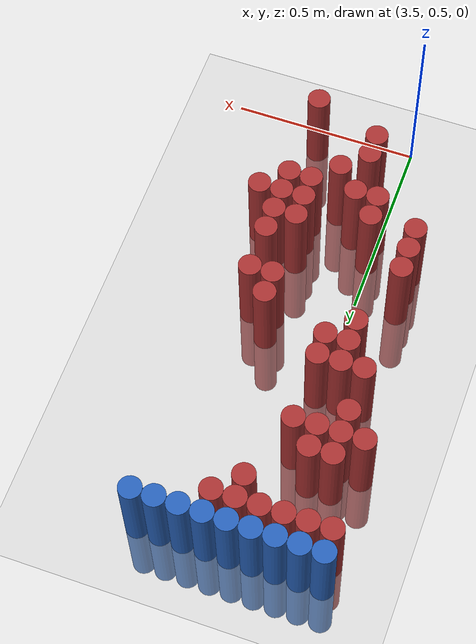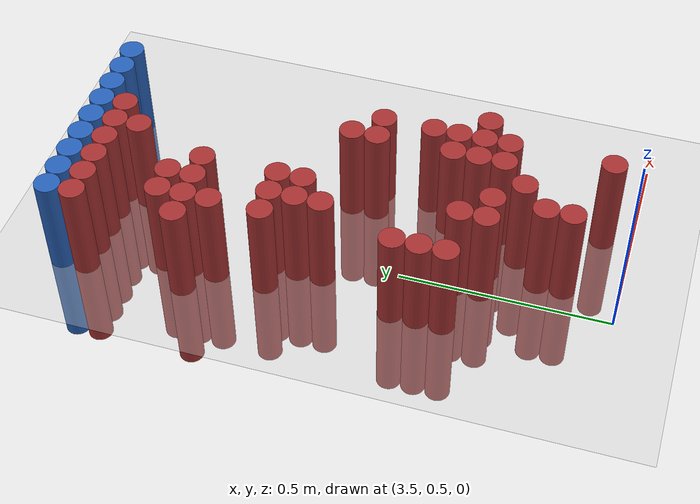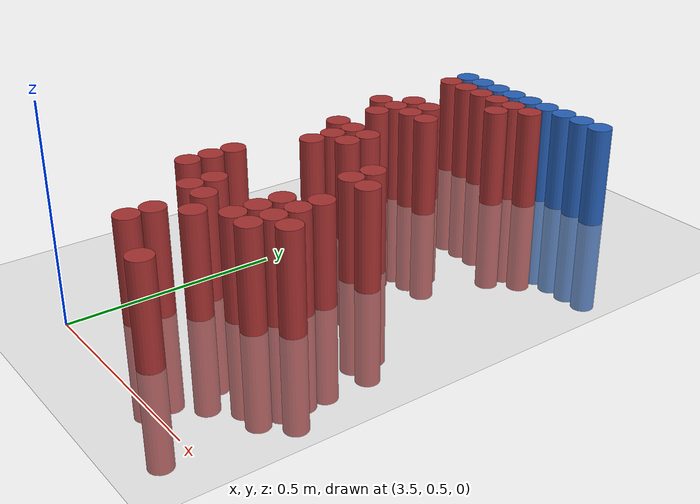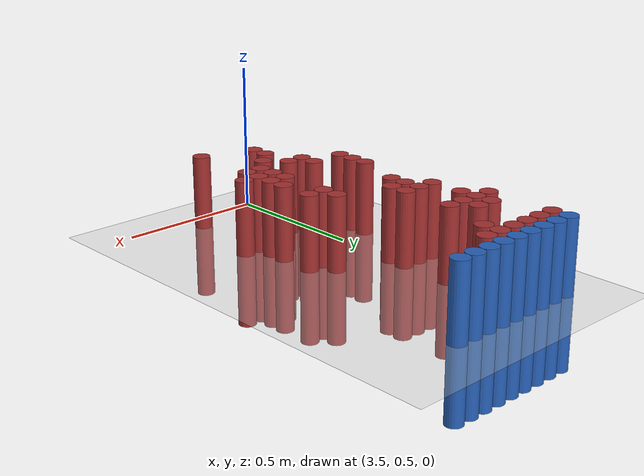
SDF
<sdf version="1.6">
 <world name="default">
  <model name="ground_plane">
   <static>1</static>
   <link name="link">
    <collision name="collision">
     <geometry><plane><normal>0 0 1</normal><size>100 100</size></plane></geometry>
     <surface><friction><ode><mu>100</mu><mu2>50</mu2></ode></friction></surface>
    </collision>
    <visual name="visual">
     <cast_shadows>0</cast_shadows>
     <geometry><plane><normal>0 0 1</normal><size>100 100</size></plane></geometry>
     <material>
      <script><uri>file://media/materials/scripts/gazebo.material</uri><name>Gazebo/Grey</name></script>
     </material>
    </visual>
   </link>
  </model>
  <model name="unit_cylinder_116">
   <static>1</static>
   <pose>3.330000 1.770000 0.000000 0.000000 0.000000 0.000000</pose>
   <link name="link">
    <inertial>
     <mass>1</mass>
     <inertia><ixx>0.145833</ixx><ixy>0</ixy><ixz>0</ixz><iyy>0.145833</iyy><iyz>0</iyz><izz>0.125</izz></inertia>
    </inertial>
    <collision name="collision">
     <geometry><cylinder><radius>0.030000</radius><length>0.5</length></cylinder></geometry>
    </collision>
    <visual name="visual">
     <geometry><cylinder><radius>0.030000</radius><length>0.5</length></cylinder></geometry>
     <material>
      <ambient>0.152000 0.379000 0.720000 1</ambient>
      <diffuse>0.152000 0.379000 0.720000 1</diffuse>
     </material>
     <material>
      <script><name>Gazebo/Grey</name><uri>file://media/materials/scripts/gazebo.material</uri></script>
     </material>
    </visual>
   </link>
  </model>
  <model name="unit_cylinder_117">
   <static>1</static>
   <pose>3.390000 1.770000 0.000000 0.000000 0.000000 0.000000</pose>
   <link name="link">
    <inertial>
     <mass>1</mass>
     <inertia><ixx>0.145833</ixx><ixy>0</ixy><ixz>0</ixz><iyy>0.145833</iyy><iyz>0</iyz><izz>0.125</izz></inertia>
    </inertial>
    <collision name="collision">
     <geometry><cylinder><radius>0.030000</radius><length>0.5</length></cylinder></geometry>
    </collision>
    <visual name="visual">
     <geometry><cylinder><radius>0.030000</radius><length>0.5</length></cylinder></geometry>
     <material>
      <ambient>0.152000 0.379000 0.720000 1</ambient>
      <diffuse>0.152000 0.379000 0.720000 1</diffuse>
     </material>
     <material>
      <script><name>Gazebo/Grey</name><uri>file://media/materials/scripts/gazebo.material</uri></script>
     </material>
    </visual>
   </link>
  </model>
  <model name="unit_cylinder_118">
   <static>1</static>
   <pose>3.450000 1.770000 0.000000 0.000000 0.000000 0.000000</pose>
   <link name="link">
    <inertial>
     <mass>1</mass>
     <inertia><ixx>0.145833</ixx><ixy>0</ixy><ixz>0</ixz><iyy>0.145833</iyy><iyz>0</iyz><izz>0.125</izz></inertia>
    </inertial>
    <collision name="collision">
     <geometry><cylinder><radius>0.030000</radius><length>0.5</length></cylinder></geometry>
    </collision>
    <visual name="visual">
     <geometry><cylinder><radius>0.030000</radius><length>0.5</length></cylinder></geometry>
     <material>
      <ambient>0.152000 0.379000 0.720000 1</ambient>
      <diffuse>0.152000 0.379000 0.720000 1</diffuse>
     </material>
     <material>
      <script><name>Gazebo/Grey</name><uri>file://media/materials/scripts/gazebo.material</uri></script>
     </material>
    </visual>
   </link>
  </model>
  <model name="unit_cylinder_119">
   <static>1</static>
   <pose>3.510000 1.770000 0.000000 0.000000 0.000000 0.000000</pose>
   <link name="link">
    <inertial>
     <mass>1</mass>
     <inertia><ixx>0.145833</ixx><ixy>0</ixy><ixz>0</ixz><iyy>0.145833</iyy><iyz>0</iyz><izz>0.125</izz></inertia>
    </inertial>
    <collision name="collision">
     <geometry><cylinder><radius>0.030000</radius><length>0.5</length></cylinder></geometry>
    </collision>
    <visual name="visual">
     <geometry><cylinder><radius>0.030000</radius><length>0.5</length></cylinder></geometry>
     <material>
      <ambient>0.152000 0.379000 0.720000 1</ambient>
      <diffuse>0.152000 0.379000 0.720000 1</diffuse>
     </material>
     <material>
      <script><name>Gazebo/Grey</name><uri>file://media/materials/scripts/gazebo.material</uri></script>
     </material>
    </visual>
   </link>
  </model>
  <model name="unit_cylinder_120">
   <static>1</static>
   <pose>3.570000 1.770000 0.000000 0.000000 0.000000 0.000000</pose>
   <link name="link">
    <inertial>
     <mass>1</mass>
     <inertia><ixx>0.145833</ixx><ixy>0</ixy><ixz>0</ixz><iyy>0.145833</iyy><iyz>0</iyz><izz>0.125</izz></inertia>
    </inertial>
    <collision name="collision">
     <geometry><cylinder><radius>0.030000</radius><length>0.5</length></cylinder></geometry>
    </collision>
    <visual name="visual">
     <geometry><cylinder><radius>0.030000</radius><length>0.5</length></cylinder></geometry>
     <material>
      <ambient>0.152000 0.379000 0.720000 1</ambient>
      <diffuse>0.152000 0.379000 0.720000 1</diffuse>
     </material>
     <material>
      <script><name>Gazebo/Grey</name><uri>file://media/materials/scripts/gazebo.material</uri></script>
     </material>
    </visual>
   </link>
  </model>
  <model name="unit_cylinder_121">
   <static>1</static>
   <pose>3.630000 1.770000 0.000000 0.000000 0.000000 0.000000</pose>
   <link name="link">
    <inertial>
     <mass>1</mass>
     <inertia><ixx>0.145833</ixx><ixy>0</ixy><ixz>0</ixz><iyy>0.145833</iyy><iyz>0</iyz><izz>0.125</izz></inertia>
    </inertial>
    <collision name="collision">
     <geometry><cylinder><radius>0.030000</radius><length>0.5</length></cylinder></geometry>
    </collision>
    <visual name="visual">
     <geometry><cylinder><radius>0.030000</radius><length>0.5</length></cylinder></geometry>
     <material>
      <ambient>0.152000 0.379000 0.720000 1</ambient>
      <diffuse>0.152000 0.379000 0.720000 1</diffuse>
     </material>
     <material>
      <script><name>Gazebo/Grey</name><uri>file://media/materials/scripts/gazebo.material</uri></script>
     </material>
    </visual>
   </link>
  </model>
  <model name="unit_cylinder_122">
   <static>1</static>
   <pose>3.690000 1.770000 0.000000 0.000000 0.000000 0.000000</pose>
   <link name="link">
    <inertial>
     <mass>1</mass>
     <inertia><ixx>0.145833</ixx><ixy>0</ixy><ixz>0</ixz><iyy>0.145833</iyy><iyz>0</iyz><izz>0.125</izz></inertia>
    </inertial>
    <collision name="collision">
     <geometry><cylinder><radius>0.030000</radius><length>0.5</length></cylinder></geometry>
    </collision>
    <visual name="visual">
     <geometry><cylinder><radius>0.030000</radius><length>0.5</length></cylinder></geometry>
     <material>
      <ambient>0.152000 0.379000 0.720000 1</ambient>
      <diffuse>0.152000 0.379000 0.720000 1</diffuse>
     </material>
     <material>
      <script><name>Gazebo/Grey</name><uri>file://media/materials/scripts/gazebo.material</uri></script>
     </material>
    </visual>
   </link>
  </model>
  <model name="unit_cylinder_123">
   <static>1</static>
   <pose>3.750000 1.770000 0.000000 0.000000 0.000000 0.000000</pose>
   <link name="link">
    <inertial>
     <mass>1</mass>
     <inertia><ixx>0.145833</ixx><ixy>0</ixy><ixz>0</ixz><iyy>0.145833</iyy><iyz>0</iyz><izz>0.125</izz></inertia>
    </inertial>
    <collision name="collision">
     <geometry><cylinder><radius>0.030000</radius><length>0.5</length></cylinder></geometry>
    </collision>
    <visual name="visual">
     <geometry><cylinder><radius>0.030000</radius><length>0.5</length></cylinder></geometry>
     <material>
      <ambient>0.152000 0.379000 0.720000 1</ambient>
      <diffuse>0.152000 0.379000 0.720000 1</diffuse>
     </material>
     <material>
      <script><name>Gazebo/Grey</name><uri>file://media/materials/scripts/gazebo.material</uri></script>
     </material>
    </visual>
   </link>
  </model>
  <model name="unit_cylinder_124">
   <static>1</static>
   <pose>3.810000 1.770000 0.000000 0.000000 0.000000 0.000000</pose>
   <link name="link">
    <inertial>
     <mass>1</mass>
     <inertia><ixx>0.145833</ixx><ixy>0</ixy><ixz>0</ixz><iyy>0.145833</iyy><iyz>0</iyz><izz>0.125</izz></inertia>
    </inertial>
    <collision name="collision">
     <geometry><cylinder><radius>0.030000</radius><length>0.5</length></cylinder></geometry>
    </collision>
    <visual name="visual">
     <geometry><cylinder><radius>0.030000</radius><length>0.5</length></cylinder></geometry>
     <material>
      <ambient>0.152000 0.379000 0.720000 1</ambient>
      <diffuse>0.152000 0.379000 0.720000 1</diffuse>
     </material>
     <material>
      <script><name>Gazebo/Grey</name><uri>file://media/materials/scripts/gazebo.material</uri></script>
     </material>
    </visual>
   </link>
  </model>
  <model name="unit_cylinder_137">
   <static>1</static>
   <pose>3.330000 1.710000 0.000000 0.000000 0.000000 0.000000</pose>
   <link name="link">
    <inertial>
     <mass>1</mass>
     <inertia><ixx>0.145833</ixx><ixy>0</ixy><ixz>0</ixz><iyy>0.145833</iyy><iyz>0</iyz><izz>0.125</izz></inertia>
    </inertial>
    <collision name="collision">
     <geometry><cylinder><radius>0.030000</radius><length>0.5</length></cylinder></geometry>
    </collision>
    <visual name="visual">
     <geometry><cylinder><radius>0.030000</radius><length>0.5</length></cylinder></geometry>
     <material>
      <ambient>0.648000 0.192000 0.192000 1</ambient>
      <diffuse>0.648000 0.192000 0.192000 1</diffuse>
     </material>
     <material>
      <script><name>Gazebo/Grey</name><uri>file://media/materials/scripts/gazebo.material</uri></script>
     </material>
    </visual>
   </link>
  </model>
  <model name="unit_cylinder_138">
   <static>1</static>
   <pose>3.390000 1.710000 0.000000 0.000000 0.000000 0.000000</pose>
   <link name="link">
    <inertial>
     <mass>1</mass>
     <inertia><ixx>0.145833</ixx><ixy>0</ixy><ixz>0</ixz><iyy>0.145833</iyy><iyz>0</iyz><izz>0.125</izz></inertia>
    </inertial>
    <collision name="collision">
     <geometry><cylinder><radius>0.030000</radius><length>0.5</length></cylinder></geometry>
    </collision>
    <visual name="visual">
     <geometry><cylinder><radius>0.030000</radius><length>0.5</length></cylinder></geometry>
     <material>
      <ambient>0.648000 0.192000 0.192000 1</ambient>
      <diffuse>0.648000 0.192000 0.192000 1</diffuse>
     </material>
     <material>
      <script><name>Gazebo/Grey</name><uri>file://media/materials/scripts/gazebo.material</uri></script>
     </material>
    </visual>
   </link>
  </model>
  <model name="unit_cylinder_139">
   <static>1</static>
   <pose>3.450000 1.710000 0.000000 0.000000 0.000000 0.000000</pose>
   <link name="link">
    <inertial>
     <mass>1</mass>
     <inertia><ixx>0.145833</ixx><ixy>0</ixy><ixz>0</ixz><iyy>0.145833</iyy><iyz>0</iyz><izz>0.125</izz></inertia>
    </inertial>
    <collision name="collision">
     <geometry><cylinder><radius>0.030000</radius><length>0.5</length></cylinder></geometry>
    </collision>
    <visual name="visual">
     <geometry><cylinder><radius>0.030000</radius><length>0.5</length></cylinder></geometry>
     <material>
      <ambient>0.648000 0.192000 0.192000 1</ambient>
      <diffuse>0.648000 0.192000 0.192000 1</diffuse>
     </material>
     <material>
      <script><name>Gazebo/Grey</name><uri>file://media/materials/scripts/gazebo.material</uri></script>
     </material>
    </visual>
   </link>
  </model>
  <model name="unit_cylinder_140">
   <static>1</static>
   <pose>3.510000 1.710000 0.000000 0.000000 0.000000 0.000000</pose>
   <link name="link">
    <inertial>
     <mass>1</mass>
     <inertia><ixx>0.145833</ixx><ixy>0</ixy><ixz>0</ixz><iyy>0.145833</iyy><iyz>0</iyz><izz>0.125</izz></inertia>
    </inertial>
    <collision name="collision">
     <geometry><cylinder><radius>0.030000</radius><length>0.5</length></cylinder></geometry>
    </collision>
    <visual name="visual">
     <geometry><cylinder><radius>0.030000</radius><length>0.5</length></cylinder></geometry>
     <material>
      <ambient>0.648000 0.192000 0.192000 1</ambient>
      <diffuse>0.648000 0.192000 0.192000 1</diffuse>
     </material>
     <material>
      <script><name>Gazebo/Grey</name><uri>file://media/materials/scripts/gazebo.material</uri></script>
     </material>
    </visual>
   </link>
  </model>
  <model name="unit_cylinder_141">
   <static>1</static>
   <pose>3.570000 1.710000 0.000000 0.000000 0.000000 0.000000</pose>
   <link name="link">
    <inertial>
     <mass>1</mass>
     <inertia><ixx>0.145833</ixx><ixy>0</ixy><ixz>0</ixz><iyy>0.145833</iyy><iyz>0</iyz><izz>0.125</izz></inertia>
    </inertial>
    <collision name="collision">
     <geometry><cylinder><radius>0.030000</radius><length>0.5</length></cylinder></geometry>
    </collision>
    <visual name="visual">
     <geometry><cylinder><radius>0.030000</radius><length>0.5</length></cylinder></geometry>
     <material>
      <ambient>0.648000 0.192000 0.192000 1</ambient>
      <diffuse>0.648000 0.192000 0.192000 1</diffuse>
     </material>
     <material>
      <script><name>Gazebo/Grey</name><uri>file://media/materials/scripts/gazebo.material</uri></script>
     </material>
    </visual>
   </link>
  </model>
  <model name="unit_cylinder_142">
   <static>1</static>
   <pose>3.630000 1.710000 0.000000 0.000000 0.000000 0.000000</pose>
   <link name="link">
    <inertial>
     <mass>1</mass>
     <inertia><ixx>0.145833</ixx><ixy>0</ixy><ixz>0</ixz><iyy>0.145833</iyy><iyz>0</iyz><izz>0.125</izz></inertia>
    </inertial>
    <collision name="collision">
     <geometry><cylinder><radius>0.030000</radius><length>0.5</length></cylinder></geometry>
    </collision>
    <visual name="visual">
     <geometry><cylinder><radius>0.030000</radius><length>0.5</length></cylinder></geometry>
     <material>
      <ambient>0.648000 0.192000 0.192000 1</ambient>
      <diffuse>0.648000 0.192000 0.192000 1</diffuse>
     </material>
     <material>
      <script><name>Gazebo/Grey</name><uri>file://media/materials/scripts/gazebo.material</uri></script>
     </material>
    </visual>
   </link>
  </model>
  <model name="unit_cylinder_150">
   <static>1</static>
   <pose>3.570000 1.650000 0.000000 0.000000 0.000000 0.000000</pose>
   <link name="link">
    <inertial>
     <mass>1</mass>
     <inertia><ixx>0.145833</ixx><ixy>0</ixy><ixz>0</ixz><iyy>0.145833</iyy><iyz>0</iyz><izz>0.125</izz></inertia>
    </inertial>
    <collision name="collision">
     <geometry><cylinder><radius>0.030000</radius><length>0.5</length></cylinder></geometry>
    </collision>
    <visual name="visual">
     <geometry><cylinder><radius>0.030000</radius><length>0.5</length></cylinder></geometry>
     <material>
      <ambient>0.648000 0.192000 0.192000 1</ambient>
      <diffuse>0.648000 0.192000 0.192000 1</diffuse>
     </material>
     <material>
      <script><name>Gazebo/Grey</name><uri>file://media/materials/scripts/gazebo.material</uri></script>
     </material>
    </visual>
   </link>
  </model>
  <model name="unit_cylinder_156">
   <static>1</static>
   <pose>3.390000 1.530000 0.000000 0.000000 0.000000 0.000000</pose>
   <link name="link">
    <inertial>
     <mass>1</mass>
     <inertia><ixx>0.145833</ixx><ixy>0</ixy><ixz>0</ixz><iyy>0.145833</iyy><iyz>0</iyz><izz>0.125</izz></inertia>
    </inertial>
    <collision name="collision">
     <geometry><cylinder><radius>0.030000</radius><length>0.5</length></cylinder></geometry>
    </collision>
    <visual name="visual">
     <geometry><cylinder><radius>0.030000</radius><length>0.5</length></cylinder></geometry>
     <material>
      <ambient>0.648000 0.192000 0.192000 1</ambient>
      <diffuse>0.648000 0.192000 0.192000 1</diffuse>
     </material>
     <material>
      <script><name>Gazebo/Grey</name><uri>file://media/materials/scripts/gazebo.material</uri></script>
     </material>
    </visual>
   </link>
  </model>
  <model name="unit_cylinder_157">
   <static>1</static>
   <pose>3.450000 1.530000 0.000000 0.000000 0.000000 0.000000</pose>
   <link name="link">
    <inertial>
     <mass>1</mass>
     <inertia><ixx>0.145833</ixx><ixy>0</ixy><ixz>0</ixz><iyy>0.145833</iyy><iyz>0</iyz><izz>0.125</izz></inertia>
    </inertial>
    <collision name="collision">
     <geometry><cylinder><radius>0.030000</radius><length>0.5</length></cylinder></geometry>
    </collision>
    <visual name="visual">
     <geometry><cylinder><radius>0.030000</radius><length>0.5</length></cylinder></geometry>
     <material>
      <ambient>0.648000 0.192000 0.192000 1</ambient>
      <diffuse>0.648000 0.192000 0.192000 1</diffuse>
     </material>
     <material>
      <script><name>Gazebo/Grey</name><uri>file://media/materials/scripts/gazebo.material</uri></script>
     </material>
    </visual>
   </link>
  </model>
  <model name="unit_cylinder_159">
   <static>1</static>
   <pose>3.330000 1.470000 0.000000 0.000000 0.000000 0.000000</pose>
   <link name="link">
    <inertial>
     <mass>1</mass>
     <inertia><ixx>0.145833</ixx><ixy>0</ixy><ixz>0</ixz><iyy>0.145833</iyy><iyz>0</iyz><izz>0.125</izz></inertia>
    </inertial>
    <collision name="collision">
     <geometry><cylinder><radius>0.030000</radius><length>0.5</length></cylinder></geometry>
    </collision>
    <visual name="visual">
     <geometry><cylinder><radius>0.030000</radius><length>0.5</length></cylinder></geometry>
     <material>
      <ambient>0.648000 0.192000 0.192000 1</ambient>
      <diffuse>0.648000 0.192000 0.192000 1</diffuse>
     </material>
     <material>
      <script><name>Gazebo/Grey</name><uri>file://media/materials/scripts/gazebo.material</uri></script>
     </material>
    </visual>
   </link>
  </model>
  <model name="unit_cylinder_160">
   <static>1</static>
   <pose>3.390000 1.470000 0.000000 0.000000 0.000000 0.000000</pose>
   <link name="link">
    <inertial>
     <mass>1</mass>
     <inertia><ixx>0.145833</ixx><ixy>0</ixy><ixz>0</ixz><iyy>0.145833</iyy><iyz>0</iyz><izz>0.125</izz></inertia>
    </inertial>
    <collision name="collision">
     <geometry><cylinder><radius>0.030000</radius><length>0.5</length></cylinder></geometry>
    </collision>
    <visual name="visual">
     <geometry><cylinder><radius>0.030000</radius><length>0.5</length></cylinder></geometry>
     <material>
      <ambient>0.648000 0.192000 0.192000 1</ambient>
      <diffuse>0.648000 0.192000 0.192000 1</diffuse>
     </material>
     <material>
      <script><name>Gazebo/Grey</name><uri>file://media/materials/scripts/gazebo.material</uri></script>
     </material>
    </visual>
   </link>
  </model>
  <model name="unit_cylinder_161">
   <static>1</static>
   <pose>3.450000 1.470000 0.000000 0.000000 0.000000 0.000000</pose>
   <link name="link">
    <inertial>
     <mass>1</mass>
     <inertia><ixx>0.145833</ixx><ixy>0</ixy><ixz>0</ixz><iyy>0.145833</iyy><iyz>0</iyz><izz>0.125</izz></inertia>
    </inertial>
    <collision name="collision">
     <geometry><cylinder><radius>0.030000</radius><length>0.5</length></cylinder></geometry>
    </collision>
    <visual name="visual">
     <geometry><cylinder><radius>0.030000</radius><length>0.5</length></cylinder></geometry>
     <material>
      <ambient>0.648000 0.192000 0.192000 1</ambient>
      <diffuse>0.648000 0.192000 0.192000 1</diffuse>
     </material>
     <material>
      <script><name>Gazebo/Grey</name><uri>file://media/materials/scripts/gazebo.material</uri></script>
     </material>
    </visual>
   </link>
  </model>
  <model name="unit_cylinder_162">
   <static>1</static>
   <pose>3.510000 1.470000 0.000000 0.000000 0.000000 0.000000</pose>
   <link name="link">
    <inertial>
     <mass>1</mass>
     <inertia><ixx>0.145833</ixx><ixy>0</ixy><ixz>0</ixz><iyy>0.145833</iyy><iyz>0</iyz><izz>0.125</izz></inertia>
    </inertial>
    <collision name="collision">
     <geometry><cylinder><radius>0.030000</radius><length>0.5</length></cylinder></geometry>
    </collision>
    <visual name="visual">
     <geometry><cylinder><radius>0.030000</radius><length>0.5</length></cylinder></geometry>
     <material>
      <ambient>0.648000 0.192000 0.192000 1</ambient>
      <diffuse>0.648000 0.192000 0.192000 1</diffuse>
     </material>
     <material>
      <script><name>Gazebo/Grey</name><uri>file://media/materials/scripts/gazebo.material</uri></script>
     </material>
    </visual>
   </link>
  </model>
  <model name="unit_cylinder_163">
   <static>1</static>
   <pose>3.390000 1.410000 0.000000 0.000000 0.000000 0.000000</pose>
   <link name="link">
    <inertial>
     <mass>1</mass>
     <inertia><ixx>0.145833</ixx><ixy>0</ixy><ixz>0</ixz><iyy>0.145833</iyy><iyz>0</iyz><izz>0.125</izz></inertia>
    </inertial>
    <collision name="collision">
     <geometry><cylinder><radius>0.030000</radius><length>0.5</length></cylinder></geometry>
    </collision>
    <visual name="visual">
     <geometry><cylinder><radius>0.030000</radius><length>0.5</length></cylinder></geometry>
     <material>
      <ambient>0.648000 0.192000 0.192000 1</ambient>
      <diffuse>0.648000 0.192000 0.192000 1</diffuse>
     </material>
     <material>
      <script><name>Gazebo/Grey</name><uri>file://media/materials/scripts/gazebo.material</uri></script>
     </material>
    </visual>
   </link>
  </model>
  <model name="unit_cylinder_166">
   <static>1</static>
   <pose>3.390000 1.290000 0.000000 0.000000 0.000000 0.000000</pose>
   <link name="link">
    <inertial>
     <mass>1</mass>
     <inertia><ixx>0.145833</ixx><ixy>0</ixy><ixz>0</ixz><iyy>0.145833</iyy><iyz>0</iyz><izz>0.125</izz></inertia>
    </inertial>
    <collision name="collision">
     <geometry><cylinder><radius>0.030000</radius><length>0.5</length></cylinder></geometry>
    </collision>
    <visual name="visual">
     <geometry><cylinder><radius>0.030000</radius><length>0.5</length></cylinder></geometry>
     <material>
      <ambient>0.648000 0.192000 0.192000 1</ambient>
      <diffuse>0.648000 0.192000 0.192000 1</diffuse>
     </material>
     <material>
      <script><name>Gazebo/Grey</name><uri>file://media/materials/scripts/gazebo.material</uri></script>
     </material>
    </visual>
   </link>
  </model>
  <model name="unit_cylinder_167">
   <static>1</static>
   <pose>3.450000 1.290000 0.000000 0.000000 0.000000 0.000000</pose>
   <link name="link">
    <inertial>
     <mass>1</mass>
     <inertia><ixx>0.145833</ixx><ixy>0</ixy><ixz>0</ixz><iyy>0.145833</iyy><iyz>0</iyz><izz>0.125</izz></inertia>
    </inertial>
    <collision name="collision">
     <geometry><cylinder><radius>0.030000</radius><length>0.5</length></cylinder></geometry>
    </collision>
    <visual name="visual">
     <geometry><cylinder><radius>0.030000</radius><length>0.5</length></cylinder></geometry>
     <material>
      <ambient>0.648000 0.192000 0.192000 1</ambient>
      <diffuse>0.648000 0.192000 0.192000 1</diffuse>
     </material>
     <material>
      <script><name>Gazebo/Grey</name><uri>file://media/materials/scripts/gazebo.material</uri></script>
     </material>
    </visual>
   </link>
  </model>
  <model name="unit_cylinder_168">
   <static>1</static>
   <pose>3.510000 1.290000 0.000000 0.000000 0.000000 0.000000</pose>
   <link name="link">
    <inertial>
     <mass>1</mass>
     <inertia><ixx>0.145833</ixx><ixy>0</ixy><ixz>0</ixz><iyy>0.145833</iyy><iyz>0</iyz><izz>0.125</izz></inertia>
    </inertial>
    <collision name="collision">
     <geometry><cylinder><radius>0.030000</radius><length>0.5</length></cylinder></geometry>
    </collision>
    <visual name="visual">
     <geometry><cylinder><radius>0.030000</radius><length>0.5</length></cylinder></geometry>
     <material>
      <ambient>0.648000 0.192000 0.192000 1</ambient>
      <diffuse>0.648000 0.192000 0.192000 1</diffuse>
     </material>
     <material>
      <script><name>Gazebo/Grey</name><uri>file://media/materials/scripts/gazebo.material</uri></script>
     </material>
    </visual>
   </link>
  </model>
  <model name="unit_cylinder_170">
   <static>1</static>
   <pose>3.450000 1.230000 0.000000 0.000000 0.000000 0.000000</pose>
   <link name="link">
    <inertial>
     <mass>1</mass>
     <inertia><ixx>0.145833</ixx><ixy>0</ixy><ixz>0</ixz><iyy>0.145833</iyy><iyz>0</iyz><izz>0.125</izz></inertia>
    </inertial>
    <collision name="collision">
     <geometry><cylinder><radius>0.030000</radius><length>0.5</length></cylinder></geometry>
    </collision>
    <visual name="visual">
     <geometry><cylinder><radius>0.030000</radius><length>0.5</length></cylinder></geometry>
     <material>
      <ambient>0.648000 0.192000 0.192000 1</ambient>
      <diffuse>0.648000 0.192000 0.192000 1</diffuse>
     </material>
     <material>
      <script><name>Gazebo/Grey</name><uri>file://media/materials/scripts/gazebo.material</uri></script>
     </material>
    </visual>
   </link>
  </model>
  <model name="unit_cylinder_171">
   <static>1</static>
   <pose>3.510000 1.230000 0.000000 0.000000 0.000000 0.000000</pose>
   <link name="link">
    <inertial>
     <mass>1</mass>
     <inertia><ixx>0.145833</ixx><ixy>0</ixy><ixz>0</ixz><iyy>0.145833</iyy><iyz>0</iyz><izz>0.125</izz></inertia>
    </inertial>
    <collision name="collision">
     <geometry><cylinder><radius>0.030000</radius><length>0.5</length></cylinder></geometry>
    </collision>
    <visual name="visual">
     <geometry><cylinder><radius>0.030000</radius><length>0.5</length></cylinder></geometry>
     <material>
      <ambient>0.648000 0.192000 0.192000 1</ambient>
      <diffuse>0.648000 0.192000 0.192000 1</diffuse>
     </material>
     <material>
      <script><name>Gazebo/Grey</name><uri>file://media/materials/scripts/gazebo.material</uri></script>
     </material>
    </visual>
   </link>
  </model>
  <model name="unit_cylinder_175">
   <static>1</static>
   <pose>3.450000 1.170000 0.000000 0.000000 0.000000 0.000000</pose>
   <link name="link">
    <inertial>
     <mass>1</mass>
     <inertia><ixx>0.145833</ixx><ixy>0</ixy><ixz>0</ixz><iyy>0.145833</iyy><iyz>0</iyz><izz>0.125</izz></inertia>
    </inertial>
    <collision name="collision">
     <geometry><cylinder><radius>0.030000</radius><length>0.5</length></cylinder></geometry>
    </collision>
    <visual name="visual">
     <geometry><cylinder><radius>0.030000</radius><length>0.5</length></cylinder></geometry>
     <material>
      <ambient>0.648000 0.192000 0.192000 1</ambient>
      <diffuse>0.648000 0.192000 0.192000 1</diffuse>
     </material>
     <material>
      <script><name>Gazebo/Grey</name><uri>file://media/materials/scripts/gazebo.material</uri></script>
     </material>
    </visual>
   </link>
  </model>
  <model name="unit_cylinder_176">
   <static>1</static>
   <pose>3.690000 1.170000 0.000000 0.000000 0.000000 0.000000</pose>
   <link name="link">
    <inertial>
     <mass>1</mass>
     <inertia><ixx>0.145833</ixx><ixy>0</ixy><ixz>0</ixz><iyy>0.145833</iyy><iyz>0</iyz><izz>0.125</izz></inertia>
    </inertial>
    <collision name="collision">
     <geometry><cylinder><radius>0.030000</radius><length>0.5</length></cylinder></geometry>
    </collision>
    <visual name="visual">
     <geometry><cylinder><radius>0.030000</radius><length>0.5</length></cylinder></geometry>
     <material>
      <ambient>0.648000 0.192000 0.192000 1</ambient>
      <diffuse>0.648000 0.192000 0.192000 1</diffuse>
     </material>
     <material>
      <script><name>Gazebo/Grey</name><uri>file://media/materials/scripts/gazebo.material</uri></script>
     </material>
    </visual>
   </link>
  </model>
  <model name="unit_cylinder_180">
   <static>1</static>
   <pose>3.690000 1.110000 0.000000 0.000000 0.000000 0.000000</pose>
   <link name="link">
    <inertial>
     <mass>1</mass>
     <inertia><ixx>0.145833</ixx><ixy>0</ixy><ixz>0</ixz><iyy>0.145833</iyy><iyz>0</iyz><izz>0.125</izz></inertia>
    </inertial>
    <collision name="collision">
     <geometry><cylinder><radius>0.030000</radius><length>0.5</length></cylinder></geometry>
    </collision>
    <visual name="visual">
     <geometry><cylinder><radius>0.030000</radius><length>0.5</length></cylinder></geometry>
     <material>
      <ambient>0.648000 0.192000 0.192000 1</ambient>
      <diffuse>0.648000 0.192000 0.192000 1</diffuse>
     </material>
     <material>
      <script><name>Gazebo/Grey</name><uri>file://media/materials/scripts/gazebo.material</uri></script>
     </material>
    </visual>
   </link>
  </model>
  <model name="unit_cylinder_181">
   <static>1</static>
   <pose>3.750000 1.110000 0.000000 0.000000 0.000000 0.000000</pose>
   <link name="link">
    <inertial>
     <mass>1</mass>
     <inertia><ixx>0.145833</ixx><ixy>0</ixy><ixz>0</ixz><iyy>0.145833</iyy><iyz>0</iyz><izz>0.125</izz></inertia>
    </inertial>
    <collision name="collision">
     <geometry><cylinder><radius>0.030000</radius><length>0.5</length></cylinder></geometry>
    </collision>
    <visual name="visual">
     <geometry><cylinder><radius>0.030000</radius><length>0.5</length></cylinder></geometry>
     <material>
      <ambient>0.648000 0.192000 0.192000 1</ambient>
      <diffuse>0.648000 0.192000 0.192000 1</diffuse>
     </material>
     <material>
      <script><name>Gazebo/Grey</name><uri>file://media/materials/scripts/gazebo.material</uri></script>
     </material>
    </visual>
   </link>
  </model>
  <model name="unit_cylinder_193">
   <static>1</static>
   <pose>3.390000 0.990000 0.000000 0.000000 0.000000 0.000000</pose>
   <link name="link">
    <inertial>
     <mass>1</mass>
     <inertia><ixx>0.145833</ixx><ixy>0</ixy><ixz>0</ixz><iyy>0.145833</iyy><iyz>0</iyz><izz>0.125</izz></inertia>
    </inertial>
    <collision name="collision">
     <geometry><cylinder><radius>0.030000</radius><length>0.5</length></cylinder></geometry>
    </collision>
    <visual name="visual">
     <geometry><cylinder><radius>0.030000</radius><length>0.5</length></cylinder></geometry>
     <material>
      <ambient>0.648000 0.192000 0.192000 1</ambient>
      <diffuse>0.648000 0.192000 0.192000 1</diffuse>
     </material>
     <material>
      <script><name>Gazebo/Grey</name><uri>file://media/materials/scripts/gazebo.material</uri></script>
     </material>
    </visual>
   </link>
  </model>
  <model name="unit_cylinder_194">
   <static>1</static>
   <pose>3.750000 0.990000 0.000000 0.000000 0.000000 0.000000</pose>
   <link name="link">
    <inertial>
     <mass>1</mass>
     <inertia><ixx>0.145833</ixx><ixy>0</ixy><ixz>0</ixz><iyy>0.145833</iyy><iyz>0</iyz><izz>0.125</izz></inertia>
    </inertial>
    <collision name="collision">
     <geometry><cylinder><radius>0.030000</radius><length>0.5</length></cylinder></geometry>
    </collision>
    <visual name="visual">
     <geometry><cylinder><radius>0.030000</radius><length>0.5</length></cylinder></geometry>
     <material>
      <ambient>0.648000 0.192000 0.192000 1</ambient>
      <diffuse>0.648000 0.192000 0.192000 1</diffuse>
     </material>
     <material>
      <script><name>Gazebo/Grey</name><uri>file://media/materials/scripts/gazebo.material</uri></script>
     </material>
    </visual>
   </link>
  </model>
  <model name="unit_cylinder_201">
   <static>1</static>
   <pose>3.390000 0.930000 0.000000 0.000000 0.000000 0.000000</pose>
   <link name="link">
    <inertial>
     <mass>1</mass>
     <inertia><ixx>0.145833</ixx><ixy>0</ixy><ixz>0</ixz><iyy>0.145833</iyy><iyz>0</iyz><izz>0.125</izz></inertia>
    </inertial>
    <collision name="collision">
     <geometry><cylinder><radius>0.030000</radius><length>0.5</length></cylinder></geometry>
    </collision>
    <visual name="visual">
     <geometry><cylinder><radius>0.030000</radius><length>0.5</length></cylinder></geometry>
     <material>
      <ambient>0.648000 0.192000 0.192000 1</ambient>
      <diffuse>0.648000 0.192000 0.192000 1</diffuse>
     </material>
     <material>
      <script><name>Gazebo/Grey</name><uri>file://media/materials/scripts/gazebo.material</uri></script>
     </material>
    </visual>
   </link>
  </model>
  <model name="unit_cylinder_202">
   <static>1</static>
   <pose>3.690000 0.930000 0.000000 0.000000 0.000000 0.000000</pose>
   <link name="link">
    <inertial>
     <mass>1</mass>
     <inertia><ixx>0.145833</ixx><ixy>0</ixy><ixz>0</ixz><iyy>0.145833</iyy><iyz>0</iyz><izz>0.125</izz></inertia>
    </inertial>
    <collision name="collision">
     <geometry><cylinder><radius>0.030000</radius><length>0.5</length></cylinder></geometry>
    </collision>
    <visual name="visual">
     <geometry><cylinder><radius>0.030000</radius><length>0.5</length></cylinder></geometry>
     <material>
      <ambient>0.648000 0.192000 0.192000 1</ambient>
      <diffuse>0.648000 0.192000 0.192000 1</diffuse>
     </material>
     <material>
      <script><name>Gazebo/Grey</name><uri>file://media/materials/scripts/gazebo.material</uri></script>
     </material>
    </visual>
   </link>
  </model>
  <model name="unit_cylinder_203">
   <static>1</static>
   <pose>3.750000 0.930000 0.000000 0.000000 0.000000 0.000000</pose>
   <link name="link">
    <inertial>
     <mass>1</mass>
     <inertia><ixx>0.145833</ixx><ixy>0</ixy><ixz>0</ixz><iyy>0.145833</iyy><iyz>0</iyz><izz>0.125</izz></inertia>
    </inertial>
    <collision name="collision">
     <geometry><cylinder><radius>0.030000</radius><length>0.5</length></cylinder></geometry>
    </collision>
    <visual name="visual">
     <geometry><cylinder><radius>0.030000</radius><length>0.5</length></cylinder></geometry>
     <material>
      <ambient>0.648000 0.192000 0.192000 1</ambient>
      <diffuse>0.648000 0.192000 0.192000 1</diffuse>
     </material>
     <material>
      <script><name>Gazebo/Grey</name><uri>file://media/materials/scripts/gazebo.material</uri></script>
     </material>
    </visual>
   </link>
  </model>
  <model name="unit_cylinder_207">
   <static>1</static>
   <pose>3.390000 0.870000 0.000000 0.000000 0.000000 0.000000</pose>
   <link name="link">
    <inertial>
     <mass>1</mass>
     <inertia><ixx>0.145833</ixx><ixy>0</ixy><ixz>0</ixz><iyy>0.145833</iyy><iyz>0</iyz><izz>0.125</izz></inertia>
    </inertial>
    <collision name="collision">
     <geometry><cylinder><radius>0.030000</radius><length>0.5</length></cylinder></geometry>
    </collision>
    <visual name="visual">
     <geometry><cylinder><radius>0.030000</radius><length>0.5</length></cylinder></geometry>
     <material>
      <ambient>0.648000 0.192000 0.192000 1</ambient>
      <diffuse>0.648000 0.192000 0.192000 1</diffuse>
     </material>
     <material>
      <script><name>Gazebo/Grey</name><uri>file://media/materials/scripts/gazebo.material</uri></script>
     </material>
    </visual>
   </link>
  </model>
  <model name="unit_cylinder_208">
   <static>1</static>
   <pose>3.510000 0.870000 0.000000 0.000000 0.000000 0.000000</pose>
   <link name="link">
    <inertial>
     <mass>1</mass>
     <inertia><ixx>0.145833</ixx><ixy>0</ixy><ixz>0</ixz><iyy>0.145833</iyy><iyz>0</iyz><izz>0.125</izz></inertia>
    </inertial>
    <collision name="collision">
     <geometry><cylinder><radius>0.030000</radius><length>0.5</length></cylinder></geometry>
    </collision>
    <visual name="visual">
     <geometry><cylinder><radius>0.030000</radius><length>0.5</length></cylinder></geometry>
     <material>
      <ambient>0.648000 0.192000 0.192000 1</ambient>
      <diffuse>0.648000 0.192000 0.192000 1</diffuse>
     </material>
     <material>
      <script><name>Gazebo/Grey</name><uri>file://media/materials/scripts/gazebo.material</uri></script>
     </material>
    </visual>
   </link>
  </model>
  <model name="unit_cylinder_209">
   <static>1</static>
   <pose>3.690000 0.870000 0.000000 0.000000 0.000000 0.000000</pose>
   <link name="link">
    <inertial>
     <mass>1</mass>
     <inertia><ixx>0.145833</ixx><ixy>0</ixy><ixz>0</ixz><iyy>0.145833</iyy><iyz>0</iyz><izz>0.125</izz></inertia>
    </inertial>
    <collision name="collision">
     <geometry><cylinder><radius>0.030000</radius><length>0.5</length></cylinder></geometry>
    </collision>
    <visual name="visual">
     <geometry><cylinder><radius>0.030000</radius><length>0.5</length></cylinder></geometry>
     <material>
      <ambient>0.648000 0.192000 0.192000 1</ambient>
      <diffuse>0.648000 0.192000 0.192000 1</diffuse>
     </material>
     <material>
      <script><name>Gazebo/Grey</name><uri>file://media/materials/scripts/gazebo.material</uri></script>
     </material>
    </visual>
   </link>
  </model>
  <model name="unit_cylinder_210">
   <static>1</static>
   <pose>3.750000 0.870000 0.000000 0.000000 0.000000 0.000000</pose>
   <link name="link">
    <inertial>
     <mass>1</mass>
     <inertia><ixx>0.145833</ixx><ixy>0</ixy><ixz>0</ixz><iyy>0.145833</iyy><iyz>0</iyz><izz>0.125</izz></inertia>
    </inertial>
    <collision name="collision">
     <geometry><cylinder><radius>0.030000</radius><length>0.5</length></cylinder></geometry>
    </collision>
    <visual name="visual">
     <geometry><cylinder><radius>0.030000</radius><length>0.5</length></cylinder></geometry>
     <material>
      <ambient>0.648000 0.192000 0.192000 1</ambient>
      <diffuse>0.648000 0.192000 0.192000 1</diffuse>
     </material>
     <material>
      <script><name>Gazebo/Grey</name><uri>file://media/materials/scripts/gazebo.material</uri></script>
     </material>
    </visual>
   </link>
  </model>
  <model name="unit_cylinder_211">
   <static>1</static>
   <pose>3.810000 0.870000 0.000000 0.000000 0.000000 0.000000</pose>
   <link name="link">
    <inertial>
     <mass>1</mass>
     <inertia><ixx>0.145833</ixx><ixy>0</ixy><ixz>0</ixz><iyy>0.145833</iyy><iyz>0</iyz><izz>0.125</izz></inertia>
    </inertial>
    <collision name="collision">
     <geometry><cylinder><radius>0.030000</radius><length>0.5</length></cylinder></geometry>
    </collision>
    <visual name="visual">
     <geometry><cylinder><radius>0.030000</radius><length>0.5</length></cylinder></geometry>
     <material>
      <ambient>0.648000 0.192000 0.192000 1</ambient>
      <diffuse>0.648000 0.192000 0.192000 1</diffuse>
     </material>
     <material>
      <script><name>Gazebo/Grey</name><uri>file://media/materials/scripts/gazebo.material</uri></script>
     </material>
    </visual>
   </link>
  </model>
  <model name="unit_cylinder_212">
   <static>1</static>
   <pose>3.510000 0.810000 0.000000 0.000000 0.000000 0.000000</pose>
   <link name="link">
    <inertial>
     <mass>1</mass>
     <inertia><ixx>0.145833</ixx><ixy>0</ixy><ixz>0</ixz><iyy>0.145833</iyy><iyz>0</iyz><izz>0.125</izz></inertia>
    </inertial>
    <collision name="collision">
     <geometry><cylinder><radius>0.030000</radius><length>0.5</length></cylinder></geometry>
    </collision>
    <visual name="visual">
     <geometry><cylinder><radius>0.030000</radius><length>0.5</length></cylinder></geometry>
     <material>
      <ambient>0.648000 0.192000 0.192000 1</ambient>
      <diffuse>0.648000 0.192000 0.192000 1</diffuse>
     </material>
     <material>
      <script><name>Gazebo/Grey</name><uri>file://media/materials/scripts/gazebo.material</uri></script>
     </material>
    </visual>
   </link>
  </model>
  <model name="unit_cylinder_213">
   <static>1</static>
   <pose>3.570000 0.810000 0.000000 0.000000 0.000000 0.000000</pose>
   <link name="link">
    <inertial>
     <mass>1</mass>
     <inertia><ixx>0.145833</ixx><ixy>0</ixy><ixz>0</ixz><iyy>0.145833</iyy><iyz>0</iyz><izz>0.125</izz></inertia>
    </inertial>
    <collision name="collision">
     <geometry><cylinder><radius>0.030000</radius><length>0.5</length></cylinder></geometry>
    </collision>
    <visual name="visual">
     <geometry><cylinder><radius>0.030000</radius><length>0.5</length></cylinder></geometry>
     <material>
      <ambient>0.648000 0.192000 0.192000 1</ambient>
      <diffuse>0.648000 0.192000 0.192000 1</diffuse>
     </material>
     <material>
      <script><name>Gazebo/Grey</name><uri>file://media/materials/scripts/gazebo.material</uri></script>
     </material>
    </visual>
   </link>
  </model>
  <model name="unit_cylinder_214">
   <static>1</static>
   <pose>3.690000 0.810000 0.000000 0.000000 0.000000 0.000000</pose>
   <link name="link">
    <inertial>
     <mass>1</mass>
     <inertia><ixx>0.145833</ixx><ixy>0</ixy><ixz>0</ixz><iyy>0.145833</iyy><iyz>0</iyz><izz>0.125</izz></inertia>
    </inertial>
    <collision name="collision">
     <geometry><cylinder><radius>0.030000</radius><length>0.5</length></cylinder></geometry>
    </collision>
    <visual name="visual">
     <geometry><cylinder><radius>0.030000</radius><length>0.5</length></cylinder></geometry>
     <material>
      <ambient>0.648000 0.192000 0.192000 1</ambient>
      <diffuse>0.648000 0.192000 0.192000 1</diffuse>
     </material>
     <material>
      <script><name>Gazebo/Grey</name><uri>file://media/materials/scripts/gazebo.material</uri></script>
     </material>
    </visual>
   </link>
  </model>
  <model name="unit_cylinder_215">
   <static>1</static>
   <pose>3.750000 0.810000 0.000000 0.000000 0.000000 0.000000</pose>
   <link name="link">
    <inertial>
     <mass>1</mass>
     <inertia><ixx>0.145833</ixx><ixy>0</ixy><ixz>0</ixz><iyy>0.145833</iyy><iyz>0</iyz><izz>0.125</izz></inertia>
    </inertial>
    <collision name="collision">
     <geometry><cylinder><radius>0.030000</radius><length>0.5</length></cylinder></geometry>
    </collision>
    <visual name="visual">
     <geometry><cylinder><radius>0.030000</radius><length>0.5</length></cylinder></geometry>
     <material>
      <ambient>0.648000 0.192000 0.192000 1</ambient>
      <diffuse>0.648000 0.192000 0.192000 1</diffuse>
     </material>
     <material>
      <script><name>Gazebo/Grey</name><uri>file://media/materials/scripts/gazebo.material</uri></script>
     </material>
    </visual>
   </link>
  </model>
  <model name="unit_cylinder_218">
   <static>1</static>
   <pose>3.630000 0.750000 0.000000 0.000000 0.000000 0.000000</pose>
   <link name="link">
    <inertial>
     <mass>1</mass>
     <inertia><ixx>0.145833</ixx><ixy>0</ixy><ixz>0</ixz><iyy>0.145833</iyy><iyz>0</iyz><izz>0.125</izz></inertia>
    </inertial>
    <collision name="collision">
     <geometry><cylinder><radius>0.030000</radius><length>0.5</length></cylinder></geometry>
    </collision>
    <visual name="visual">
     <geometry><cylinder><radius>0.030000</radius><length>0.5</length></cylinder></geometry>
     <material>
      <ambient>0.648000 0.192000 0.192000 1</ambient>
      <diffuse>0.648000 0.192000 0.192000 1</diffuse>
     </material>
     <material>
      <script><name>Gazebo/Grey</name><uri>file://media/materials/scripts/gazebo.material</uri></script>
     </material>
    </visual>
   </link>
  </model>
  <model name="unit_cylinder_222">
   <static>1</static>
   <pose>3.570000 0.690000 0.000000 0.000000 0.000000 0.000000</pose>
   <link name="link">
    <inertial>
     <mass>1</mass>
     <inertia><ixx>0.145833</ixx><ixy>0</ixy><ixz>0</ixz><iyy>0.145833</iyy><iyz>0</iyz><izz>0.125</izz></inertia>
    </inertial>
    <collision name="collision">
     <geometry><cylinder><radius>0.030000</radius><length>0.5</length></cylinder></geometry>
    </collision>
    <visual name="visual">
     <geometry><cylinder><radius>0.030000</radius><length>0.5</length></cylinder></geometry>
     <material>
      <ambient>0.648000 0.192000 0.192000 1</ambient>
      <diffuse>0.648000 0.192000 0.192000 1</diffuse>
     </material>
     <material>
      <script><name>Gazebo/Grey</name><uri>file://media/materials/scripts/gazebo.material</uri></script>
     </material>
    </visual>
   </link>
  </model>
  <model name="unit_cylinder_224">
   <static>1</static>
   <pose>3.570000 0.630000 0.000000 0.000000 0.000000 0.000000</pose>
   <link name="link">
    <inertial>
     <mass>1</mass>
     <inertia><ixx>0.145833</ixx><ixy>0</ixy><ixz>0</ixz><iyy>0.145833</iyy><iyz>0</iyz><izz>0.125</izz></inertia>
    </inertial>
    <collision name="collision">
     <geometry><cylinder><radius>0.030000</radius><length>0.5</length></cylinder></geometry>
    </collision>
    <visual name="visual">
     <geometry><cylinder><radius>0.030000</radius><length>0.5</length></cylinder></geometry>
     <material>
      <ambient>0.648000 0.192000 0.192000 1</ambient>
      <diffuse>0.648000 0.192000 0.192000 1</diffuse>
     </material>
     <material>
      <script><name>Gazebo/Grey</name><uri>file://media/materials/scripts/gazebo.material</uri></script>
     </material>
    </visual>
   </link>
  </model>
  <model name="unit_cylinder_230">
   <static>1</static>
   <pose>3.750000 0.570000 0.000000 0.000000 0.000000 0.000000</pose>
   <link name="link">
    <inertial>
     <mass>1</mass>
     <inertia><ixx>0.145833</ixx><ixy>0</ixy><ixz>0</ixz><iyy>0.145833</iyy><iyz>0</iyz><izz>0.125</izz></inertia>
    </inertial>
    <collision name="collision">
     <geometry><cylinder><radius>0.030000</radius><length>0.5</length></cylinder></geometry>
    </collision>
    <visual name="visual">
     <geometry><cylinder><radius>0.030000</radius><length>0.5</length></cylinder></geometry>
     <material>
      <ambient>0.648000 0.192000 0.192000 1</ambient>
      <diffuse>0.648000 0.192000 0.192000 1</diffuse>
     </material>
     <material>
      <script><name>Gazebo/Grey</name><uri>file://media/materials/scripts/gazebo.material</uri></script>
     </material>
    </visual>
   </link>
  </model>
 </world>
</sdf>
